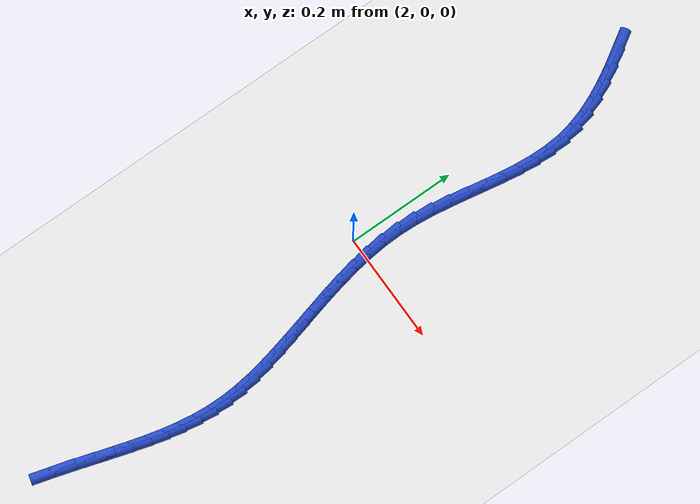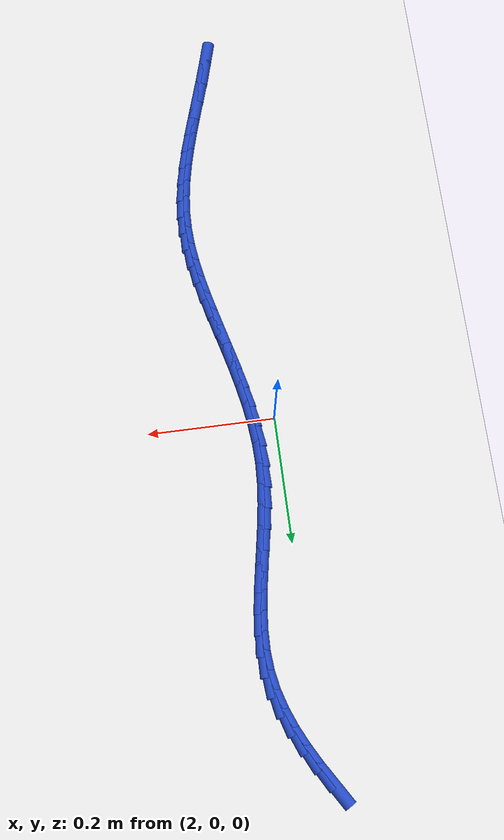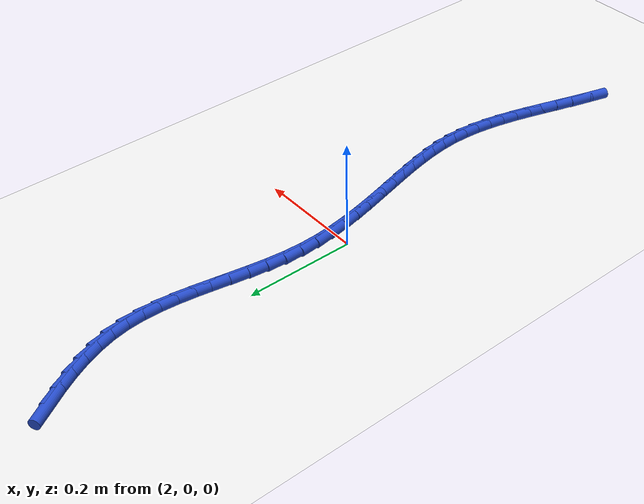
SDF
<sdf version="1.6">
 <world name="default">
  <model name="ground_plane">
   <static>1</static>
   <link name="link">
    <collision name="collision">
     <geometry><plane><normal>0 0 1</normal><size>100 100</size></plane></geometry>
     <surface><friction><ode><mu>100</mu><mu2>50</mu2></ode></friction></surface>
    </collision>
    <visual name="visual">
     <cast_shadows>0</cast_shadows>
     <geometry><plane><normal>0 0 1</normal><size>100 100</size></plane></geometry>
     <material>
      <script><uri>file://media/materials/scripts/gazebo.material</uri><name>Gazebo/WhiteGlow</name></script>
     </material>
    </visual>
   </link>
  </model>
  <model name="line">
   <link name="link_100">
    <pose>1.9914590654102728 0.5610214977510132 0.01 0 1.57 -1.0160169194208923</pose>
    <collision name="collision">
     <geometry><cylinder><radius>0.01</radius><length>0.08</length></cylinder></geometry>
    </collision>
    <visual name="visual">
     <material>
      <script><name>Gazebo/Blue</name><uri>file://media/materials/scripts/gazebo.material</uri></script>
     </material>
     <geometry><cylinder><radius>0.01</radius><length>0.08</length></cylinder></geometry>
    </visual>
   </link>
   <link name="link_101">
    <pose>2.008613853085382 0.5333391159778169 0.01 0 1.57 -1.0620678561278272</pose>
    <collision name="collision">
     <geometry><cylinder><radius>0.01</radius><length>0.08</length></cylinder></geometry>
    </collision>
    <visual name="visual">
     <material>
      <script><name>Gazebo/Blue</name><uri>file://media/materials/scripts/gazebo.material</uri></script>
     </material>
     <geometry><cylinder><radius>0.01</radius><length>0.08</length></cylinder></geometry>
    </visual>
   </link>
   <link name="link_102">
    <pose>2.0242129185951767 0.5053682888149912 0.01 0 1.57 -1.1216546809077437</pose>
    <collision name="collision">
     <geometry><cylinder><radius>0.01</radius><length>0.08</length></cylinder></geometry>
    </collision>
    <visual name="visual">
     <material>
      <script><name>Gazebo/Blue</name><uri>file://media/materials/scripts/gazebo.material</uri></script>
     </material>
     <geometry><cylinder><radius>0.01</radius><length>0.08</length></cylinder></geometry>
    </visual>
   </link>
   <link name="link_103">
    <pose>2.0378612239100025 0.47705211820515847 0.01 0 1.57 -1.1958512945487374</pose>
    <collision name="collision">
     <geometry><cylinder><radius>0.01</radius><length>0.08</length></cylinder></geometry>
    </collision>
    <visual name="visual">
     <material>
      <script><name>Gazebo/Blue</name><uri>file://media/materials/scripts/gazebo.material</uri></script>
     </material>
     <geometry><cylinder><radius>0.01</radius><length>0.08</length></cylinder></geometry>
    </visual>
   </link>
   <link name="link_104">
    <pose>2.0491637310002018 0.44833370609094025 0.01 0 1.57 -1.2853746870228915</pose>
    <collision name="collision">
     <geometry><cylinder><radius>0.01</radius><length>0.08</length></cylinder></geometry>
    </collision>
    <visual name="visual">
     <material>
      <script><name>Gazebo/Blue</name><uri>file://media/materials/scripts/gazebo.material</uri></script>
     </material>
     <geometry><cylinder><radius>0.01</radius><length>0.08</length></cylinder></geometry>
    </visual>
   </link>
   <link name="link_105">
    <pose>2.05772540183612 0.4191561544149601 0.01 0 1.57 -1.3900561273603957</pose>
    <collision name="collision">
     <geometry><cylinder><radius>0.01</radius><length>0.08</length></cylinder></geometry>
    </collision>
    <visual name="visual">
     <material>
      <script><name>Gazebo/Blue</name><uri>file://media/materials/scripts/gazebo.material</uri></script>
     </material>
     <geometry><cylinder><radius>0.01</radius><length>0.08</length></cylinder></geometry>
    </visual>
   </link>
   <link name="link_106">
    <pose>2.0631514352636295 0.38946259285201335 0.01 0 1.57 -1.5007006683555224</pose>
    <collision name="collision">
     <geometry><cylinder><radius>0.01</radius><length>0.08</length></cylinder></geometry>
    </collision>
    <visual name="visual">
     <material>
      <script><name>Gazebo/Blue</name><uri>file://media/materials/scripts/gazebo.material</uri></script>
     </material>
     <geometry><cylinder><radius>0.01</radius><length>0.08</length></cylinder></geometry>
    </visual>
   </link>
   <link name="link_107">
    <pose>2.06527459239945 0.359222792902156 0.01 0 1.57 1.5481843650832494</pose>
    <collision name="collision">
     <geometry><cylinder><radius>0.01</radius><length>0.08</length></cylinder></geometry>
    </collision>
    <visual name="visual">
     <material>
      <script><name>Gazebo/Blue</name><uri>file://media/materials/scripts/gazebo.material</uri></script>
     </material>
     <geometry><cylinder><radius>0.01</radius><length>0.08</length></cylinder></geometry>
    </visual>
   </link>
   <link name="link_108">
    <pose>2.06457938303205 0.32848282946214163 0.01 0 1.57 1.477638934423157</pose>
    <collision name="collision">
     <geometry><cylinder><radius>0.01</radius><length>0.08</length></cylinder></geometry>
    </collision>
    <visual name="visual">
     <material>
      <script><name>Gazebo/Blue</name><uri>file://media/materials/scripts/gazebo.material</uri></script>
     </material>
     <geometry><cylinder><radius>0.01</radius><length>0.08</length></cylinder></geometry>
    </visual>
   </link>
   <link name="link_109">
    <pose>2.0616662591308264 0.29730235134549565 0.01 0 1.57 1.4282217184770831</pose>
    <collision name="collision">
     <geometry><cylinder><radius>0.01</radius><length>0.08</length></cylinder></geometry>
    </collision>
    <visual name="visual">
     <material>
      <script><name>Gazebo/Blue</name><uri>file://media/materials/scripts/gazebo.material</uri></script>
     </material>
     <geometry><cylinder><radius>0.01</radius><length>0.08</length></cylinder></geometry>
    </visual>
   </link>
   <link name="link_110">
    <pose>2.0571356726651744 0.26574100736574197 0.01 0 1.57 1.3985201526529198</pose>
    <collision name="collision">
     <geometry><cylinder><radius>0.01</radius><length>0.08</length></cylinder></geometry>
    </collision>
    <visual name="visual">
     <material>
      <script><name>Gazebo/Blue</name><uri>file://media/materials/scripts/gazebo.material</uri></script>
     </material>
     <geometry><cylinder><radius>0.01</radius><length>0.08</length></cylinder></geometry>
    </visual>
   </link>
   <link name="link_111">
    <pose>2.051588075604494 0.23385844633640498 0.01 0 1.57 1.3873384526837107</pose>
    <collision name="collision">
     <geometry><cylinder><radius>0.01</radius><length>0.08</length></cylinder></geometry>
    </collision>
    <visual name="visual">
     <material>
      <script><name>Gazebo/Blue</name><uri>file://media/materials/scripts/gazebo.material</uri></script>
     </material>
     <geometry><cylinder><radius>0.01</radius><length>0.08</length></cylinder></geometry>
    </visual>
   </link>
   <link name="link_112">
    <pose>2.0456239199181803 0.20171431707100884 0.01 0 1.57 1.393962172929501</pose>
    <collision name="collision">
     <geometry><cylinder><radius>0.01</radius><length>0.08</length></cylinder></geometry>
    </collision>
    <visual name="visual">
     <material>
      <script><name>Gazebo/Blue</name><uri>file://media/materials/scripts/gazebo.material</uri></script>
     </material>
     <geometry><cylinder><radius>0.01</radius><length>0.08</length></cylinder></geometry>
    </visual>
   </link>
   <link name="link_113">
    <pose>2.0398436575756302 0.16936826838307872 0.01 0 1.57 1.418215734146542</pose>
    <collision name="collision">
     <geometry><cylinder><radius>0.01</radius><length>0.08</length></cylinder></geometry>
    </collision>
    <visual name="visual">
     <material>
      <script><name>Gazebo/Blue</name><uri>file://media/materials/scripts/gazebo.material</uri></script>
     </material>
     <geometry><cylinder><radius>0.01</radius><length>0.08</length></cylinder></geometry>
    </visual>
   </link>
   <link name="link_114">
    <pose>2.0348477405462417 0.13687994908613865 0.01 0 1.57 1.4603779041638711</pose>
    <collision name="collision">
     <geometry><cylinder><radius>0.01</radius><length>0.08</length></cylinder></geometry>
    </collision>
    <visual name="visual">
     <material>
      <script><name>Gazebo/Blue</name><uri>file://media/materials/scripts/gazebo.material</uri></script>
     </material>
     <geometry><cylinder><radius>0.01</radius><length>0.08</length></cylinder></geometry>
    </visual>
   </link>
   <link name="link_115">
    <pose>2.0312366207994095 0.10430900799371262 0.01 0 1.57 1.5209546803266667</pose>
    <collision name="collision">
     <geometry><cylinder><radius>0.01</radius><length>0.08</length></cylinder></geometry>
    </collision>
    <visual name="visual">
     <material>
      <script><name>Gazebo/Blue</name><uri>file://media/materials/scripts/gazebo.material</uri></script>
     </material>
     <geometry><cylinder><radius>0.01</radius><length>0.08</length></cylinder></geometry>
    </visual>
   </link>
   <link name="link_116">
    <pose>2.0296107398874708 0.07171509363065921 0.01 0 1.57 -1.5469675843601558</pose>
    <collision name="collision">
     <geometry><cylinder><radius>0.01</radius><length>0.08</length></cylinder></geometry>
    </collision>
    <visual name="visual">
     <material>
      <script><name>Gazebo/Blue</name><uri>file://media/materials/scripts/gazebo.material</uri></script>
     </material>
     <geometry><cylinder><radius>0.01</radius><length>0.08</length></cylinder></geometry>
    </visual>
   </link>
   <link name="link_117">
    <pose>2.0303868061661285 0.03915276309957104 0.01 0 1.57 -1.4804833874900303</pose>
    <collision name="collision">
     <geometry><cylinder><radius>0.01</radius><length>0.08</length></cylinder></geometry>
    </collision>
    <visual name="visual">
     <material>
      <script><name>Gazebo/Blue</name><uri>file://media/materials/scripts/gazebo.material</uri></script>
     </material>
     <geometry><cylinder><radius>0.01</radius><length>0.08</length></cylinder></geometry>
    </visual>
   </link>
   <link name="link_118">
    <pose>2.0333294630771888 0.006658504161835763 0.01 0 1.57 -1.4258260460832464</pose>
    <collision name="collision">
     <geometry><cylinder><radius>0.01</radius><length>0.08</length></cylinder></geometry>
    </collision>
    <visual name="visual">
     <material>
      <script><name>Gazebo/Blue</name><uri>file://media/materials/scripts/gazebo.material</uri></script>
     </material>
     <geometry><cylinder><radius>0.01</radius><length>0.08</length></cylinder></geometry>
    </visual>
   </link>
   <link name="link_119">
    <pose>2.038058765222793 -0.02573520211592627 0.01 0 1.57 -1.3828406957798767</pose>
    <collision name="collision">
     <geometry><cylinder><radius>0.01</radius><length>0.08</length></cylinder></geometry>
    </collision>
    <visual name="visual">
     <material>
      <script><name>Gazebo/Blue</name><uri>file://media/materials/scripts/gazebo.material</uri></script>
     </material>
     <geometry><cylinder><radius>0.01</radius><length>0.08</length></cylinder></geometry>
    </visual>
   </link>
   <link name="link_120">
    <pose>2.0441947672050866 -0.05799587466709352 0.01 0 1.57 -1.3512220096911973</pose>
    <collision name="collision">
     <geometry><cylinder><radius>0.01</radius><length>0.08</length></cylinder></geometry>
    </collision>
    <visual name="visual">
     <material>
      <script><name>Gazebo/Blue</name><uri>file://media/materials/scripts/gazebo.material</uri></script>
     </material>
     <geometry><cylinder><radius>0.01</radius><length>0.08</length></cylinder></geometry>
    </visual>
   </link>
   <link name="link_121">
    <pose>2.051357523626211 -0.09009103242504575 0.01 0 1.57 -1.3306840118541359</pose>
    <collision name="collision">
     <geometry><cylinder><radius>0.01</radius><length>0.08</length></cylinder></geometry>
    </collision>
    <visual name="visual">
     <material>
      <script><name>Gazebo/Blue</name><uri>file://media/materials/scripts/gazebo.material</uri></script>
     </material>
     <geometry><cylinder><radius>0.01</radius><length>0.08</length></cylinder></geometry>
    </visual>
   </link>
   <link name="link_122">
    <pose>2.05916708908831 -0.12198819432316227 0.01 0 1.57 -1.3210751103869094</pose>
    <collision name="collision">
     <geometry><cylinder><radius>0.01</radius><length>0.08</length></cylinder></geometry>
    </collision>
    <visual name="visual">
     <material>
      <script><name>Gazebo/Blue</name><uri>file://media/materials/scripts/gazebo.material</uri></script>
     </material>
     <geometry><cylinder><radius>0.01</radius><length>0.08</length></cylinder></geometry>
    </visual>
   </link>
   <link name="link_123">
    <pose>2.0672435181935276 -0.15365487929482238 0.01 0 1.57 -1.3224513917853333</pose>
    <collision name="collision">
     <geometry><cylinder><radius>0.01</radius><length>0.08</length></cylinder></geometry>
    </collision>
    <visual name="visual">
     <material>
      <script><name>Gazebo/Blue</name><uri>file://media/materials/scripts/gazebo.material</uri></script>
     </material>
     <geometry><cylinder><radius>0.01</radius><length>0.08</length></cylinder></geometry>
    </visual>
   </link>
   <link name="link_124">
    <pose>2.0752068655440064 -0.1850586062734054 0.01 0 1.57 -1.3351197064389002</pose>
    <collision name="collision">
     <geometry><cylinder><radius>0.01</radius><length>0.08</length></cylinder></geometry>
    </collision>
    <visual name="visual">
     <material>
      <script><name>Gazebo/Blue</name><uri>file://media/materials/scripts/gazebo.material</uri></script>
     </material>
     <geometry><cylinder><radius>0.01</radius><length>0.08</length></cylinder></geometry>
    </visual>
   </link>
   <link name="link_125">
    <pose>2.0826771857418893 -0.2161668941922914 0.01 0 1.57 -1.3596547067823364</pose>
    <collision name="collision">
     <geometry><cylinder><radius>0.01</radius><length>0.08</length></cylinder></geometry>
    </collision>
    <visual name="visual">
     <material>
      <script><name>Gazebo/Blue</name><uri>file://media/materials/scripts/gazebo.material</uri></script>
     </material>
     <geometry><cylinder><radius>0.01</radius><length>0.08</length></cylinder></geometry>
    </visual>
   </link>
   <link name="link_126">
    <pose>2.0892745333893203 -0.2469472619848581 0.01 0 1.57 -1.3968829716284172</pose>
    <collision name="collision">
     <geometry><cylinder><radius>0.01</radius><length>0.08</length></cylinder></geometry>
    </collision>
    <visual name="visual">
     <material>
      <script><name>Gazebo/Blue</name><uri>file://media/materials/scripts/gazebo.material</uri></script>
     </material>
     <geometry><cylinder><radius>0.01</radius><length>0.08</length></cylinder></geometry>
    </visual>
   </link>
   <link name="link_127">
    <pose>2.0946189630884424 -0.2773672285844857 0.01 0 1.57 -1.4478128557140912</pose>
    <collision name="collision">
     <geometry><cylinder><radius>0.01</radius><length>0.08</length></cylinder></geometry>
    </collision>
    <visual name="visual">
     <material>
      <script><name>Gazebo/Blue</name><uri>file://media/materials/scripts/gazebo.material</uri></script>
     </material>
     <geometry><cylinder><radius>0.01</radius><length>0.08</length></cylinder></geometry>
    </visual>
   </link>
   <link name="link_128">
    <pose>2.098330529441399 -0.30739431292455344 0.01 0 1.57 -1.5134702598148297</pose>
    <collision name="collision">
     <geometry><cylinder><radius>0.01</radius><length>0.08</length></cylinder></geometry>
    </collision>
    <visual name="visual">
     <material>
      <script><name>Gazebo/Blue</name><uri>file://media/materials/scripts/gazebo.material</uri></script>
     </material>
     <geometry><cylinder><radius>0.01</radius><length>0.08</length></cylinder></geometry>
    </visual>
   </link>
   <link name="link_129">
    <pose>2.100029342007467 -0.3369960512646502 0.01 0 1.57 1.5516278151678837</pose>
    <collision name="collision">
     <geometry><cylinder><radius>0.01</radius><length>0.08</length></cylinder></geometry>
    </collision>
    <visual name="visual">
     <material>
      <script><name>Gazebo/Blue</name><uri>file://media/materials/scripts/gazebo.material</uri></script>
     </material>
     <geometry><cylinder><radius>0.01</radius><length>0.08</length></cylinder></geometry>
    </visual>
   </link>
   <link name="link_130">
    <pose>2.0994698161041003 -0.3661823221323962 0.01 0 1.57 1.4797296347192854</pose>
    <collision name="collision">
     <geometry><cylinder><radius>0.01</radius><length>0.08</length></cylinder></geometry>
    </collision>
    <visual name="visual">
     <material>
      <script><name>Gazebo/Blue</name><uri>file://media/materials/scripts/gazebo.material</uri></script>
     </material>
     <geometry><cylinder><radius>0.01</radius><length>0.08</length></cylinder></geometry>
    </visual>
   </link>
   <link name="link_131">
    <pose>2.096829405859665 -0.395096374530086 0.01 0 1.57 1.4171891653700002</pose>
    <collision name="collision">
     <geometry><cylinder><radius>0.01</radius><length>0.08</length></cylinder></geometry>
    </collision>
    <visual name="visual">
     <material>
      <script><name>Gazebo/Blue</name><uri>file://media/materials/scripts/gazebo.material</uri></script>
     </material>
     <geometry><cylinder><radius>0.01</radius><length>0.08</length></cylinder></geometry>
    </visual>
   </link>
   <link name="link_132">
    <pose>2.0923686480928683 -0.42390765074905185 0.01 0 1.57 1.3652572215561214</pose>
    <collision name="collision">
     <geometry><cylinder><radius>0.01</radius><length>0.08</length></cylinder></geometry>
    </collision>
    <visual name="visual">
     <material>
      <script><name>Gazebo/Blue</name><uri>file://media/materials/scripts/gazebo.material</uri></script>
     </material>
     <geometry><cylinder><radius>0.01</radius><length>0.08</length></cylinder></geometry>
    </visual>
   </link>
   <link name="link_133">
    <pose>2.0863480796224203 -0.4527855930806238 0.01 0 1.57 1.3244820369936254</pose>
    <collision name="collision">
     <geometry><cylinder><radius>0.01</radius><length>0.08</length></cylinder></geometry>
    </collision>
    <visual name="visual">
     <material>
      <script><name>Gazebo/Blue</name><uri>file://media/materials/scripts/gazebo.material</uri></script>
     </material>
     <geometry><cylinder><radius>0.01</radius><length>0.08</length></cylinder></geometry>
    </visual>
   </link>
   <link name="link_134">
    <pose>2.079028237267029 -0.4818996438161341 0.01 0 1.57 1.2948657547384774</pose>
    <collision name="collision">
     <geometry><cylinder><radius>0.01</radius><length>0.08</length></cylinder></geometry>
    </collision>
    <visual name="visual">
     <material>
      <script><name>Gazebo/Blue</name><uri>file://media/materials/scripts/gazebo.material</uri></script>
     </material>
     <geometry><cylinder><radius>0.01</radius><length>0.08</length></cylinder></geometry>
    </visual>
   </link>
   <link name="link_135">
    <pose>2.0706696578453996 -0.5114192452469141 0.01 0 1.57 1.276038211292175</pose>
    <collision name="collision">
     <geometry><cylinder><radius>0.01</radius><length>0.08</length></cylinder></geometry>
    </collision>
    <visual name="visual">
     <material>
      <script><name>Gazebo/Blue</name><uri>file://media/materials/scripts/gazebo.material</uri></script>
     </material>
     <geometry><cylinder><radius>0.01</radius><length>0.08</length></cylinder></geometry>
    </visual>
   </link>
   <link name="link_136">
    <pose>2.061532878176242 -0.541513839664295 0.01 0 1.57 1.2674020569929139</pose>
    <collision name="collision">
     <geometry><cylinder><radius>0.01</radius><length>0.08</length></cylinder></geometry>
    </collision>
    <visual name="visual">
     <material>
      <script><name>Gazebo/Blue</name><uri>file://media/materials/scripts/gazebo.material</uri></script>
     </material>
     <geometry><cylinder><radius>0.01</radius><length>0.08</length></cylinder></geometry>
    </visual>
   </link>
   <link name="link_137">
    <pose>2.0518784350782644 -0.5723528693596087 0.01 0 1.57 1.2682332295512049</pose>
    <collision name="collision">
     <geometry><cylinder><radius>0.01</radius><length>0.08</length></cylinder></geometry>
    </collision>
    <visual name="visual">
     <material>
      <script><name>Gazebo/Blue</name><uri>file://media/materials/scripts/gazebo.material</uri></script>
     </material>
     <geometry><cylinder><radius>0.01</radius><length>0.08</length></cylinder></geometry>
    </visual>
   </link>
   <link name="link_138">
    <pose>2.0419668653701746 -0.6041057766241865 0.01 0 1.57 1.2777396040008566</pose>
    <collision name="collision">
     <geometry><cylinder><radius>0.01</radius><length>0.08</length></cylinder></geometry>
    </collision>
    <visual name="visual">
     <material>
      <script><name>Gazebo/Blue</name><uri>file://media/materials/scripts/gazebo.material</uri></script>
     </material>
     <geometry><cylinder><radius>0.01</radius><length>0.08</length></cylinder></geometry>
    </visual>
   </link>
   <link name="link_139">
    <pose>2.032058705870681 -0.6369420037493598 0.01 0 1.57 1.295088603942108</pose>
    <collision name="collision">
     <geometry><cylinder><radius>0.01</radius><length>0.08</length></cylinder></geometry>
    </collision>
    <visual name="visual">
     <material>
      <script><name>Gazebo/Blue</name><uri>file://media/materials/scripts/gazebo.material</uri></script>
     </material>
     <geometry><cylinder><radius>0.01</radius><length>0.08</length></cylinder></geometry>
    </visual>
   </link>
  </model>
 </world>
</sdf>
